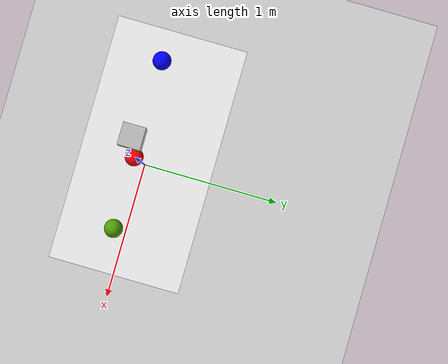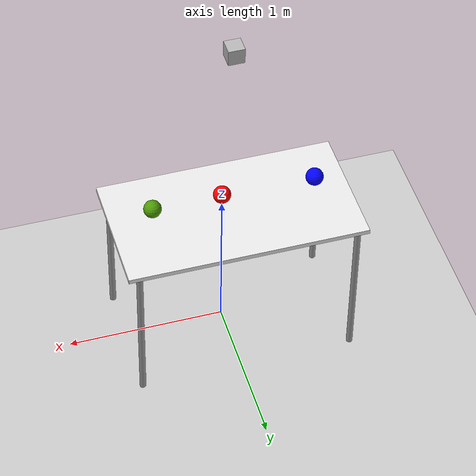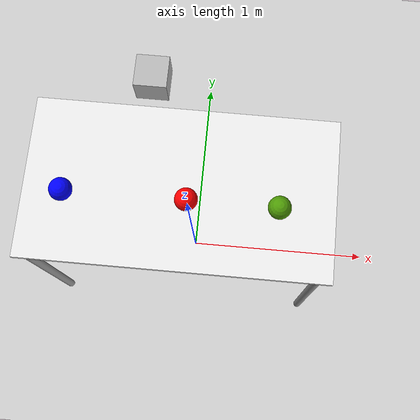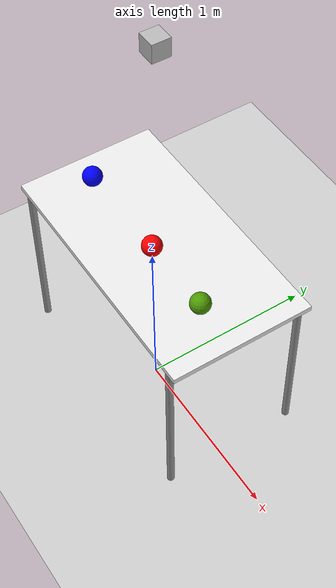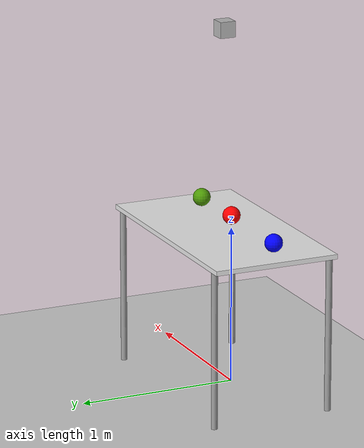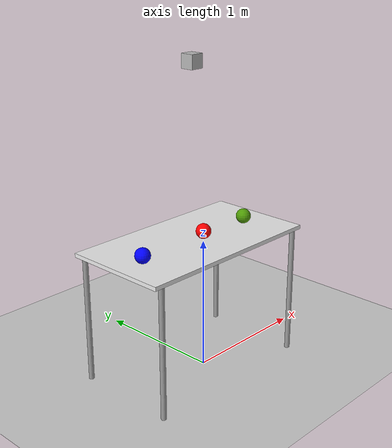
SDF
<sdf version="1.7">
 <world name="default">
  <light name="sun" type="directional">
   <pose>0 0 10 0 -0 0</pose>
   <diffuse>0.8 0.8 0.8 1</diffuse>
   <specular>0.2 0.2 0.2 1</specular>
   <attenuation>
    <range>1000</range>
    <constant>0.9</constant>
    <linear>0.01</linear>
    <quadratic>0.001</quadratic>
   </attenuation>
   <direction>-0.5 0.1 -0.9</direction>
   <spot><inner_angle>0</inner_angle><outer_angle>0</outer_angle><falloff>0</falloff></spot>
  </light>
  <model name="ground_plane">
   <static>1</static>
   <link name="link">
    <collision name="collision">
     <geometry><plane><normal>0 0 1</normal><size>100 100</size></plane></geometry>
     <surface><friction><ode><mu>100</mu><mu2>50</mu2></ode></friction></surface>
    </collision>
    <visual name="visual">
     <cast_shadows>0</cast_shadows>
     <geometry><plane><normal>0 0 1</normal><size>100 100</size></plane></geometry>
     <material>
      <script><uri>file://media/materials/scripts/gazebo.material</uri><name>Gazebo/Grey</name></script>
     </material>
    </visual>
   </link>
  </model>
  <gravity>0 0 -9.8</gravity>
  <magnetic_field>6e-06 2.3e-05 -4.2e-05</magnetic_field>
  <atmosphere type="adiabatic"/>
  <physics type="ode">
   <max_step_size>0.001</max_step_size>
   <real_time_factor>1</real_time_factor>
   <real_time_update_rate>1000</real_time_update_rate>
  </physics>
  <scene><ambient>0.4 0.4 0.4 1</ambient><background>0.7 0.7 0.7 1</background><shadows>1</shadows></scene>
  <spherical_coordinates>
   <surface_model>EARTH_WGS84</surface_model>
   <latitude_deg>0</latitude_deg>
   <longitude_deg>0</longitude_deg>
   <elevation>0</elevation>
   <heading_deg>0</heading_deg>
  </spherical_coordinates>
  <model name="table_3balls_camera_v3_dynamic">
   <link name="Ball_Blue">
    <inertial>
     <mass>0.0013865</mass>
     <inertia>
      <ixx>1.72e-06</ixx>
      <ixy>0</ixy>
      <ixz>0</ixz>
      <iyy>1.72e-06</iyy>
      <iyz>0</iyz>
      <izz>1.72e-06</izz>
     </inertia>
    </inertial>
    <pose>-0.591225 0 1.07207 0 -0 0</pose>
    <self_collide>1</self_collide>
    <visual name="visual">
     <geometry><sphere><radius>0.0557538</radius></sphere></geometry>
     <material>
      <lighting>1</lighting>
      <script><uri>file://media/materials/scripts/gazebo.material</uri><name>Gazebo/Grey</name></script>
      <shader type="pixel"><normal_map>__default__</normal_map></shader>
      <diffuse>0 0 1 0</diffuse>
      <ambient>0.3 0.3 0.3 1</ambient>
      <specular>0.01 0.01 0.01 1</specular>
      <emissive>0 0 0 1</emissive>
     </material>
    </visual>
    <collision name="collision">
     <geometry><sphere><radius>0.055754</radius></sphere></geometry>
     <surface>
      <friction>
       <ode><mu>1</mu><mu2>1</mu2><fdir1>0 0 0</fdir1><slip1>0</slip1><slip2>0</slip2></ode>
       <torsional>
        <coefficient>1</coefficient>
        <patch_radius>0</patch_radius>
        <surface_radius>0</surface_radius>
        <use_patch_radius>1</use_patch_radius>
        <ode><slip>0</slip></ode>
       </torsional>
      </friction>
      <bounce><restitution_coefficient>0</restitution_coefficient><threshold>1e+06</threshold></bounce>
      <contact>
       <collide_without_contact>0</collide_without_contact>
       <collide_without_contact_bitmask>1</collide_without_contact_bitmask>
       <collide_bitmask>1</collide_bitmask>
       <ode>
        <soft_cfm>0</soft_cfm>
        <soft_erp>0.2</soft_erp>
        <kp>1e+13</kp>
        <kd>1</kd>
        <max_vel>0.01</max_vel>
        <min_depth>0</min_depth>
       </ode>
       <bullet>
        <split_impulse>1</split_impulse>
        <split_impulse_penetration_threshold>-0.01</split_impulse_penetration_threshold>
        <soft_cfm>0</soft_cfm>
        <soft_erp>0.2</soft_erp>
        <kp>1e+13</kp>
        <kd>1</kd>
       </bullet>
      </contact>
     </surface>
    </collision>
   </link>
   <link name="Ball_green">
    <inertial>
     <mass>0.0013865</mass>
     <inertia>
      <ixx>1.72e-06</ixx>
      <ixy>0</ixy>
      <ixz>0</ixz>
      <iyy>1.72e-06</iyy>
      <iyz>0</iyz>
      <izz>1.72e-06</izz>
     </inertia>
    </inertial>
    <pose>0.43753 0 1.07792 0 -0 0</pose>
    <self_collide>1</self_collide>
    <visual name="visual">
     <geometry><sphere><radius>0.0557538</radius></sphere></geometry>
     <material>
      <lighting>1</lighting>
      <script><uri>file://media/materials/scripts/gazebo.material</uri><name>Gazebo/Grey</name></script>
      <shader type="pixel"><normal_map>__default__</normal_map></shader>
      <ambient>0 1 0 0</ambient>
      <diffuse>0.306 0.604 0.024 1</diffuse>
      <specular>0.01 0.01 0.01 1</specular>
      <emissive>0 0 0 1</emissive>
     </material>
    </visual>
    <collision name="collision">
     <geometry><sphere><radius>0.055754</radius></sphere></geometry>
     <surface>
      <friction>
       <ode><mu>1</mu><mu2>1</mu2><fdir1>0 0 0</fdir1><slip1>0</slip1><slip2>0</slip2></ode>
       <torsional>
        <coefficient>1</coefficient>
        <patch_radius>0</patch_radius>
        <surface_radius>0</surface_radius>
        <use_patch_radius>1</use_patch_radius>
        <ode><slip>0</slip></ode>
       </torsional>
      </friction>
      <bounce><restitution_coefficient>0</restitution_coefficient><threshold>1e+06</threshold></bounce>
      <contact>
       <collide_without_contact>0</collide_without_contact>
       <collide_without_contact_bitmask>1</collide_without_contact_bitmask>
       <collide_bitmask>1</collide_bitmask>
       <ode>
        <soft_cfm>0</soft_cfm>
        <soft_erp>0.2</soft_erp>
        <kp>1e+13</kp>
        <kd>1</kd>
        <max_vel>0.01</max_vel>
        <min_depth>0</min_depth>
       </ode>
       <bullet>
        <split_impulse>1</split_impulse>
        <split_impulse_penetration_threshold>-0.01</split_impulse_penetration_threshold>
        <soft_cfm>0</soft_cfm>
        <soft_erp>0.2</soft_erp>
        <kp>1e+13</kp>
        <kd>1</kd>
       </bullet>
      </contact>
     </surface>
    </collision>
   </link>
   <link name="ball_red">
    <inertial>
     <mass>0.0013865</mass>
     <inertia>
      <ixx>1.72e-06</ixx>
      <ixy>0</ixy>
      <ixz>0</ixz>
      <iyy>1.72e-06</iyy>
      <iyz>0</iyz>
      <izz>1.72e-06</izz>
     </inertia>
    </inertial>
    <pose>0 0 1.07989 0 -0 0</pose>
    <self_collide>1</self_collide>
    <visual name="visual">
     <geometry><sphere><radius>0.0557538</radius></sphere></geometry>
     <material>
      <lighting>1</lighting>
      <script><uri>file://media/materials/scripts/gazebo.material</uri><name>Gazebo/Grey</name></script>
      <shader type="pixel"><normal_map>__default__</normal_map></shader>
      <ambient>1 0 0 0</ambient>
      <diffuse>0.7 0.7 0.7 1</diffuse>
      <specular>0.01 0.01 0.01 1</specular>
      <emissive>0 0 0 1</emissive>
     </material>
    </visual>
    <collision name="collision">
     <geometry><sphere><radius>0.055754</radius></sphere></geometry>
     <surface>
      <friction>
       <ode><mu>1</mu><mu2>1</mu2><fdir1>0 0 0</fdir1><slip1>0</slip1><slip2>0</slip2></ode>
       <torsional>
        <coefficient>1</coefficient>
        <patch_radius>0</patch_radius>
        <surface_radius>0</surface_radius>
        <use_patch_radius>1</use_patch_radius>
        <ode><slip>0</slip></ode>
       </torsional>
      </friction>
      <bounce><restitution_coefficient>0</restitution_coefficient><threshold>1e+06</threshold></bounce>
      <contact>
       <collide_without_contact>0</collide_without_contact>
       <collide_without_contact_bitmask>1</collide_without_contact_bitmask>
       <collide_bitmask>1</collide_bitmask>
       <ode>
        <soft_cfm>0</soft_cfm>
        <soft_erp>0.2</soft_erp>
        <kp>1e+13</kp>
        <kd>1</kd>
        <max_vel>0.01</max_vel>
        <min_depth>0</min_depth>
       </ode>
       <bullet>
        <split_impulse>1</split_impulse>
        <split_impulse_penetration_threshold>-0.01</split_impulse_penetration_threshold>
        <soft_cfm>0</soft_cfm>
        <soft_erp>0.2</soft_erp>
        <kp>1e+13</kp>
        <kd>1</kd>
       </bullet>
      </contact>
     </surface>
    </collision>
   </link>
   <link name="table">
    <self_collide>1</self_collide>
    <pose>-0.040807 0.07129 0 0 -0 0</pose>
    <inertial>
     <inertia><ixx>1</ixx><ixy>0</ixy><ixz>0</ixz><iyy>1</iyy><iyz>0</iyz><izz>1</izz></inertia>
     <mass>1</mass>
    </inertial>
    <visual name="visual1">
     <pose>0 0 1 0 -0 0</pose>
     <geometry><box><size>1.5 0.8 0.03</size></box></geometry>
     <material>
      <script><uri>file://media/materials/scripts/gazebo.material</uri><name>Gazebo/White</name></script>
      <shader type="pixel"><normal_map>__default__</normal_map></shader>
      <emissive>0 0 0 1</emissive>
     </material>
    </visual>
    <visual name="front_left_leg">
     <pose>0.68 0.38 0.5 0 -0 0</pose>
     <geometry><cylinder><radius>0.02</radius><length>1</length></cylinder></geometry>
     <material>
      <script><uri>file://media/materials/scripts/gazebo.material</uri><name>Gazebo/Grey</name></script>
      <shader type="pixel"><normal_map>__default__</normal_map></shader>
      <emissive>0 0 0 1</emissive>
     </material>
    </visual>
    <visual name="back_left_leg">
     <pose>-0.68 0.38 0.5 0 -0 0</pose>
     <geometry><cylinder><radius>0.02</radius><length>1</length></cylinder></geometry>
     <material>
      <script><uri>file://media/materials/scripts/gazebo.material</uri><name>Gazebo/Grey</name></script>
      <shader type="pixel"><normal_map>__default__</normal_map></shader>
      <emissive>0 0 0 1</emissive>
     </material>
    </visual>
    <visual name="back_right_leg">
     <pose>-0.68 -0.38 0.5 0 -0 0</pose>
     <geometry><cylinder><radius>0.02</radius><length>1</length></cylinder></geometry>
     <material>
      <script><uri>file://media/materials/scripts/gazebo.material</uri><name>Gazebo/Grey</name></script>
      <shader type="pixel"><normal_map>__default__</normal_map></shader>
      <emissive>0 0 0 1</emissive>
     </material>
    </visual>
    <visual name="front_right_leg">
     <pose>0.68 -0.38 0.5 0 -0 0</pose>
     <geometry><cylinder><radius>0.02</radius><length>1</length></cylinder></geometry>
     <material>
      <script><uri>file://media/materials/scripts/gazebo.material</uri><name>Gazebo/Grey</name></script>
      <shader type="pixel"><normal_map>__default__</normal_map></shader>
      <emissive>0 0 0 1</emissive>
     </material>
    </visual>
    <collision name="surface">
     <pose>0 0 1 0 -0 0</pose>
     <geometry><box><size>1.5 0.8 0.03</size></box></geometry>
     <surface>
      <friction>
       <ode><mu>0.6</mu><mu2>0.6</mu2><fdir1>0 0 0</fdir1><slip1>0</slip1><slip2>0</slip2></ode>
       <torsional>
        <coefficient>1</coefficient>
        <patch_radius>0</patch_radius>
        <surface_radius>0</surface_radius>
        <use_patch_radius>1</use_patch_radius>
        <ode><slip>0</slip></ode>
       </torsional>
      </friction>
      <bounce><restitution_coefficient>0</restitution_coefficient><threshold>1e+06</threshold></bounce>
      <contact>
       <collide_without_contact>0</collide_without_contact>
       <collide_without_contact_bitmask>1</collide_without_contact_bitmask>
       <collide_bitmask>1</collide_bitmask>
       <ode>
        <soft_cfm>0</soft_cfm>
        <soft_erp>0.2</soft_erp>
        <kp>1e+13</kp>
        <kd>1</kd>
        <max_vel>0.01</max_vel>
        <min_depth>0</min_depth>
       </ode>
       <bullet>
        <split_impulse>1</split_impulse>
        <split_impulse_penetration_threshold>-0.01</split_impulse_penetration_threshold>
        <soft_cfm>0</soft_cfm>
        <soft_erp>0.2</soft_erp>
        <kp>1e+13</kp>
        <kd>1</kd>
       </bullet>
      </contact>
     </surface>
    </collision>
    <collision name="back_right_leg">
     <pose>-0.68 -0.38 0.5 0 -0 0</pose>
     <geometry><cylinder><radius>0.02</radius><length>1</length></cylinder></geometry>
     <surface>
      <friction>
       <ode><mu>1</mu><mu2>1</mu2><fdir1>0 0 0</fdir1><slip1>0</slip1><slip2>0</slip2></ode>
       <torsional>
        <coefficient>1</coefficient>
        <patch_radius>0</patch_radius>
        <surface_radius>0</surface_radius>
        <use_patch_radius>1</use_patch_radius>
        <ode><slip>0</slip></ode>
       </torsional>
      </friction>
      <bounce><restitution_coefficient>0</restitution_coefficient><threshold>1e+06</threshold></bounce>
      <contact>
       <collide_without_contact>0</collide_without_contact>
       <collide_without_contact_bitmask>1</collide_without_contact_bitmask>
       <collide_bitmask>1</collide_bitmask>
       <ode>
        <soft_cfm>0</soft_cfm>
        <soft_erp>0.2</soft_erp>
        <kp>1e+13</kp>
        <kd>1</kd>
        <max_vel>0.01</max_vel>
        <min_depth>0</min_depth>
       </ode>
       <bullet>
        <split_impulse>1</split_impulse>
        <split_impulse_penetration_threshold>-0.01</split_impulse_penetration_threshold>
        <soft_cfm>0</soft_cfm>
        <soft_erp>0.2</soft_erp>
        <kp>1e+13</kp>
        <kd>1</kd>
       </bullet>
      </contact>
     </surface>
    </collision>
    <collision name="front_left_leg">
     <pose>0.68 0.38 0.5 0 -0 0</pose>
     <geometry><cylinder><radius>0.02</radius><length>1</length></cylinder></geometry>
     <surface>
      <friction>
       <ode><mu>1</mu><mu2>1</mu2><fdir1>0 0 0</fdir1><slip1>0</slip1><slip2>0</slip2></ode>
       <torsional>
        <coefficient>1</coefficient>
        <patch_radius>0</patch_radius>
        <surface_radius>0</surface_radius>
        <use_patch_radius>1</use_patch_radius>
        <ode><slip>0</slip></ode>
       </torsional>
      </friction>
      <bounce><restitution_coefficient>0</restitution_coefficient><threshold>1e+06</threshold></bounce>
      <contact>
       <collide_without_contact>0</collide_without_contact>
       <collide_without_contact_bitmask>1</collide_without_contact_bitmask>
       <collide_bitmask>1</collide_bitmask>
       <ode>
        <soft_cfm>0</soft_cfm>
        <soft_erp>0.2</soft_erp>
        <kp>1e+13</kp>
        <kd>1</kd>
        <max_vel>0.01</max_vel>
        <min_depth>0</min_depth>
       </ode>
       <bullet>
        <split_impulse>1</split_impulse>
        <split_impulse_penetration_threshold>-0.01</split_impulse_penetration_threshold>
        <soft_cfm>0</soft_cfm>
        <soft_erp>0.2</soft_erp>
        <kp>1e+13</kp>
        <kd>1</kd>
       </bullet>
      </contact>
     </surface>
    </collision>
    <collision name="front_right_leg">
     <pose>0.68 -0.38 0.5 0 -0 0</pose>
     <geometry><cylinder><radius>0.02</radius><length>1</length></cylinder></geometry>
     <surface>
      <friction>
       <ode><mu>1</mu><mu2>1</mu2><fdir1>0 0 0</fdir1><slip1>0</slip1><slip2>0</slip2></ode>
       <torsional>
        <coefficient>1</coefficient>
        <patch_radius>0</patch_radius>
        <surface_radius>0</surface_radius>
        <use_patch_radius>1</use_patch_radius>
        <ode><slip>0</slip></ode>
       </torsional>
      </friction>
      <bounce><restitution_coefficient>0</restitution_coefficient><threshold>1e+06</threshold></bounce>
      <contact>
       <collide_without_contact>0</collide_without_contact>
       <collide_without_contact_bitmask>1</collide_without_contact_bitmask>
       <collide_bitmask>1</collide_bitmask>
       <ode>
        <soft_cfm>0</soft_cfm>
        <soft_erp>0.2</soft_erp>
        <kp>1e+13</kp>
        <kd>1</kd>
        <max_vel>0.01</max_vel>
        <min_depth>0</min_depth>
       </ode>
       <bullet>
        <split_impulse>1</split_impulse>
        <split_impulse_penetration_threshold>-0.01</split_impulse_penetration_threshold>
        <soft_cfm>0</soft_cfm>
        <soft_erp>0.2</soft_erp>
        <kp>1e+13</kp>
        <kd>1</kd>
       </bullet>
      </contact>
     </surface>
    </collision>
    <collision name="back_left_leg">
     <pose>-0.68 0.38 0.5 0 -0 0</pose>
     <geometry><cylinder><radius>0.02</radius><length>1</length></cylinder></geometry>
     <surface>
      <friction>
       <ode><mu>1</mu><mu2>1</mu2><fdir1>0 0 0</fdir1><slip1>0</slip1><slip2>0</slip2></ode>
       <torsional>
        <coefficient>1</coefficient>
        <patch_radius>0</patch_radius>
        <surface_radius>0</surface_radius>
        <use_patch_radius>1</use_patch_radius>
        <ode><slip>0</slip></ode>
       </torsional>
      </friction>
      <bounce><restitution_coefficient>0</restitution_coefficient><threshold>1e+06</threshold></bounce>
      <contact>
       <collide_without_contact>0</collide_without_contact>
       <collide_without_contact_bitmask>1</collide_without_contact_bitmask>
       <collide_bitmask>1</collide_bitmask>
       <ode>
        <soft_cfm>0</soft_cfm>
        <soft_erp>0.2</soft_erp>
        <kp>1e+13</kp>
        <kd>1</kd>
        <max_vel>0.01</max_vel>
        <min_depth>0</min_depth>
       </ode>
       <bullet>
        <split_impulse>1</split_impulse>
        <split_impulse_penetration_threshold>-0.01</split_impulse_penetration_threshold>
        <soft_cfm>0</soft_cfm>
        <soft_erp>0.2</soft_erp>
        <kp>1e+13</kp>
        <kd>1</kd>
       </bullet>
      </contact>
     </surface>
    </collision>
   </link>
   <model name="camera">
    <pose>-0.040807 0.071288 2.27968 3.13216 1.57079 -1.58023</pose>
    <link name="link">
     <inertial>
      <mass>0.1</mass>
      <inertia>
       <ixx>0.000166667</ixx>
       <iyy>0.000166667</iyy>
       <izz>0.000166667</izz>
       <ixy>0</ixy>
       <ixz>0</ixz>
       <iyz>0</iyz>
      </inertia>
     </inertial>
     <collision name="collision"><geometry><box><size>0.1 0.1 0.1</size></box></geometry></collision>
     <visual name="visual"><geometry><box><size>0.1 0.1 0.1</size></box></geometry></visual>
     <sensor name="camera" type="camera">
      <camera>
       <horizontal_fov>1.047</horizontal_fov>
       <image><width>320</width><height>240</height></image>
       <clip><near>0.1</near><far>100</far></clip>
      </camera>
      <always_on>1</always_on>
      <update_rate>30</update_rate>
      <visualize>1</visualize>
      <plugin name="camera_plugin" filename="libgazebo_ros_camera.so">
       <ros>
        <namespace>top_down_cam</namespace>
        <remapping>image_raw:=custom_img</remapping>
        <remapping>camera_info:=custom_info</remapping>
       </ros>
       <camera_name>custom_rgb</camera_name>
       <frame_name>camera_rgb_frame</frame_name>
       <hack_baseline>0.07</hack_baseline>
      </plugin>
     </sensor>
    </link>
   </model>
   <joint name="link_JOINT_0" type="fixed">
    <parent>camera::link</parent>
    <child>table</child>
    <physics>
     <ode><limit><cfm>0</cfm><erp>0.2</erp></limit><suspension><cfm>0</cfm><erp>0.2</erp></suspension></ode>
    </physics>
   </joint>
   <static>0</static>
  </model>
 </world>
</sdf>
